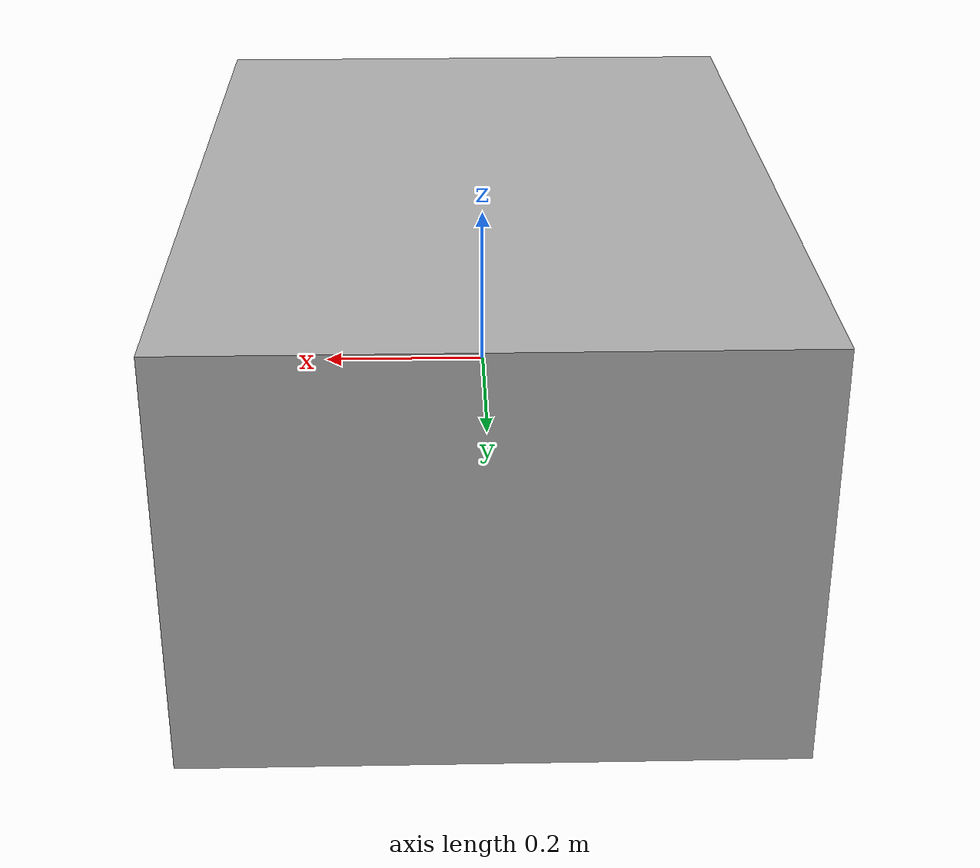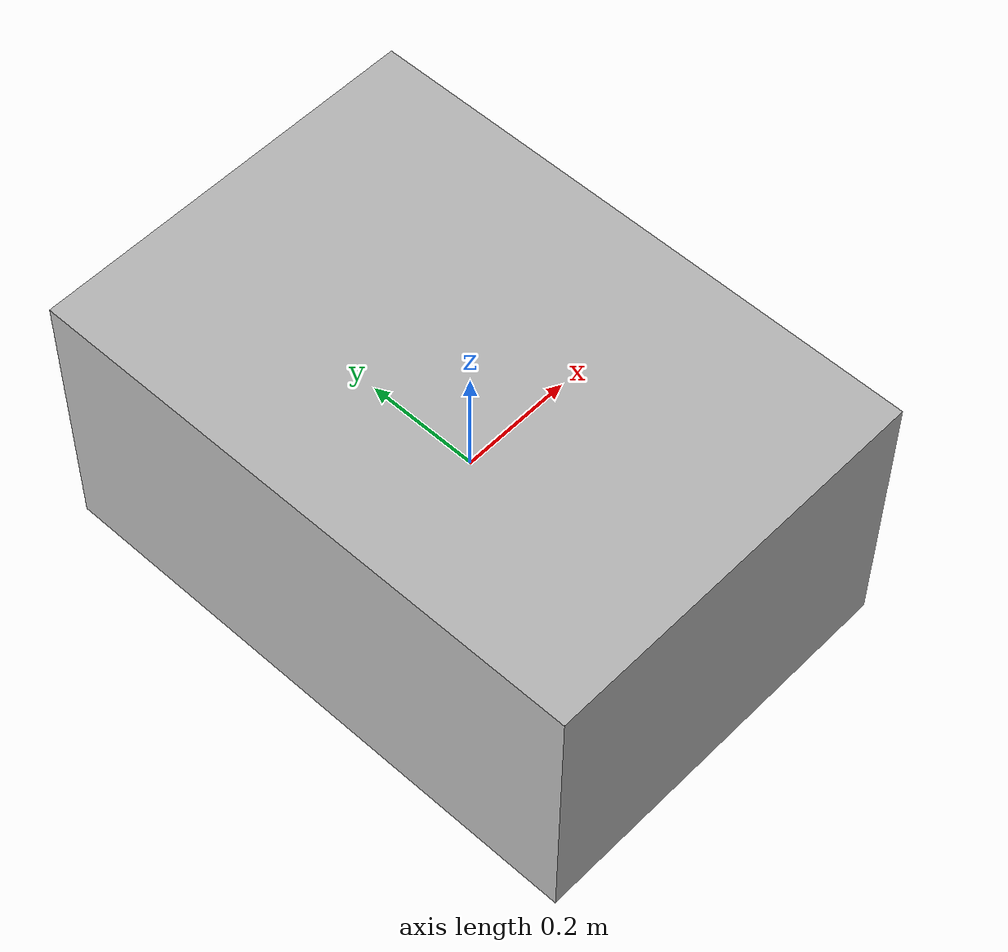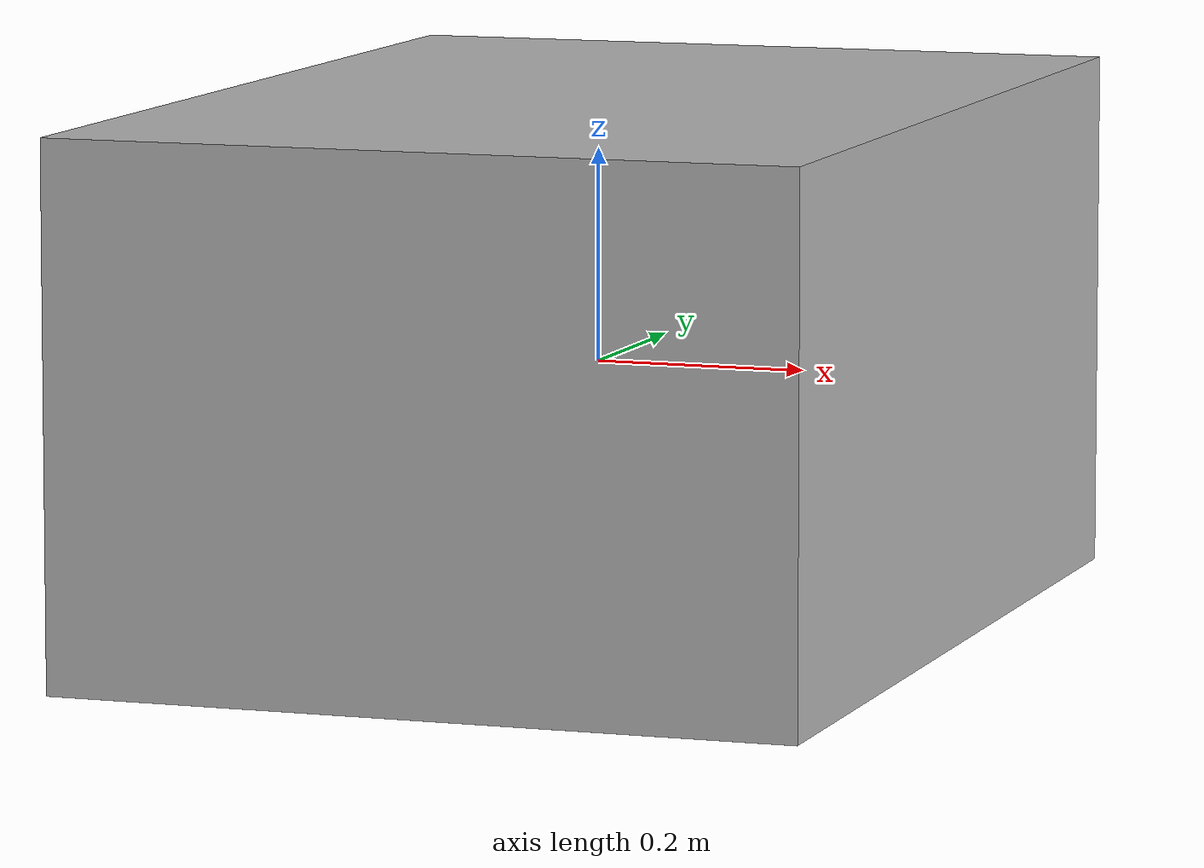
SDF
<sdf version="1.7">
  <model name="warehouse_robot">
    <static>true</static>
    <link name="link">
      <visual name="visual">
        <geometry><box><size>0.7 1.0 0.5</size></box></geometry>
      </visual>
      <collision name="collision">
        <geometry><box><size>0.7 1.0 0.5</size></box></geometry>
      </collision>
    </link>
  </model>
</sdf>
